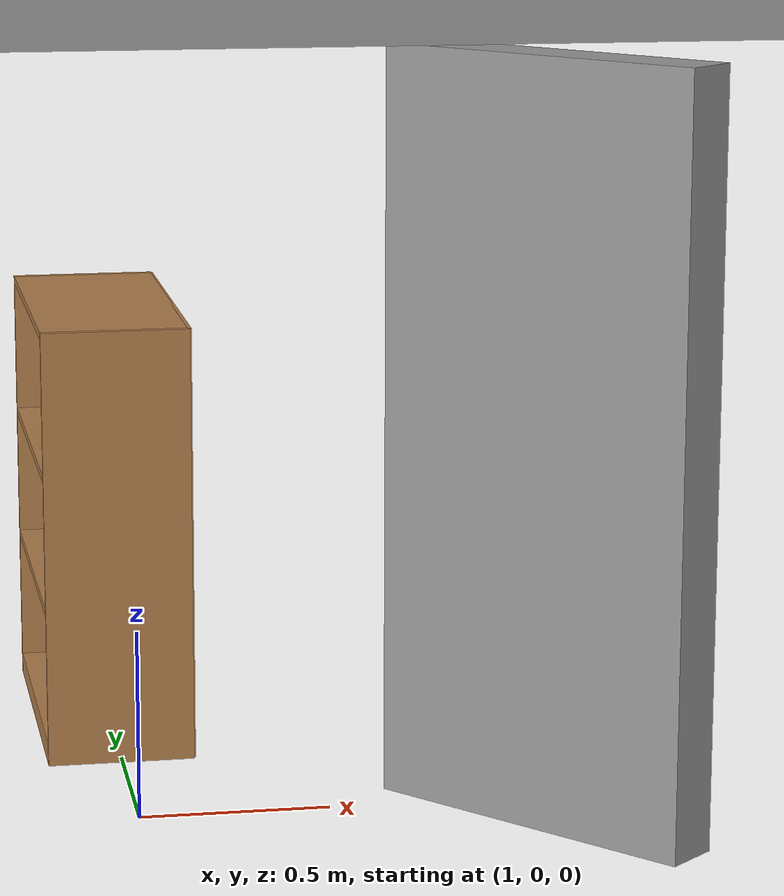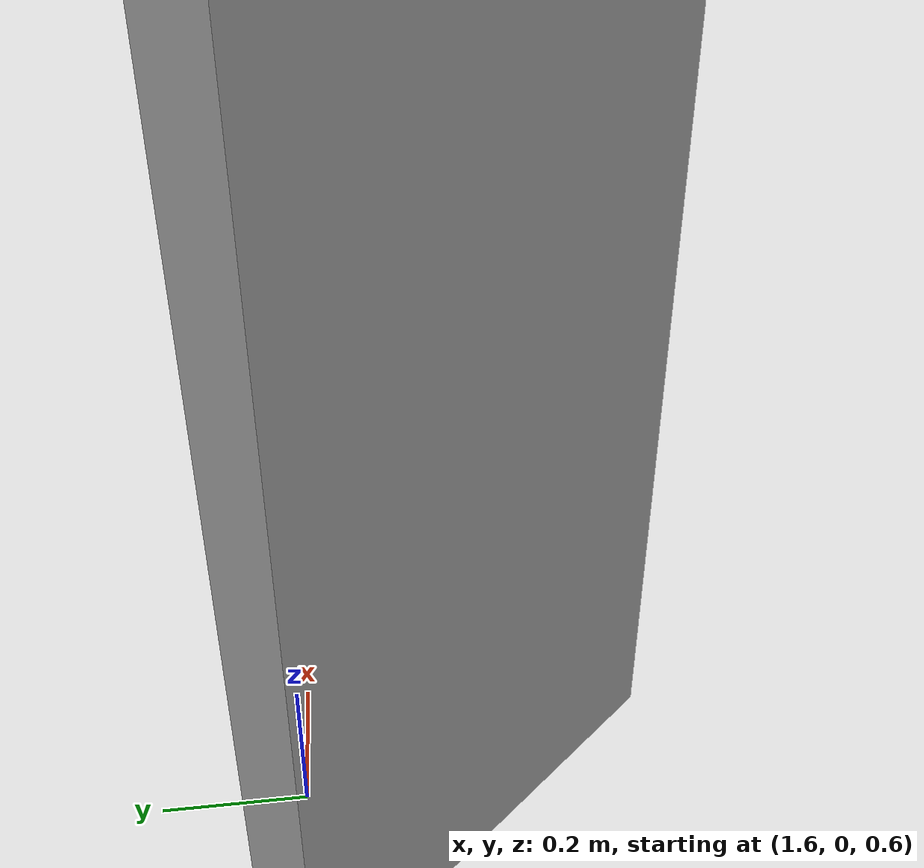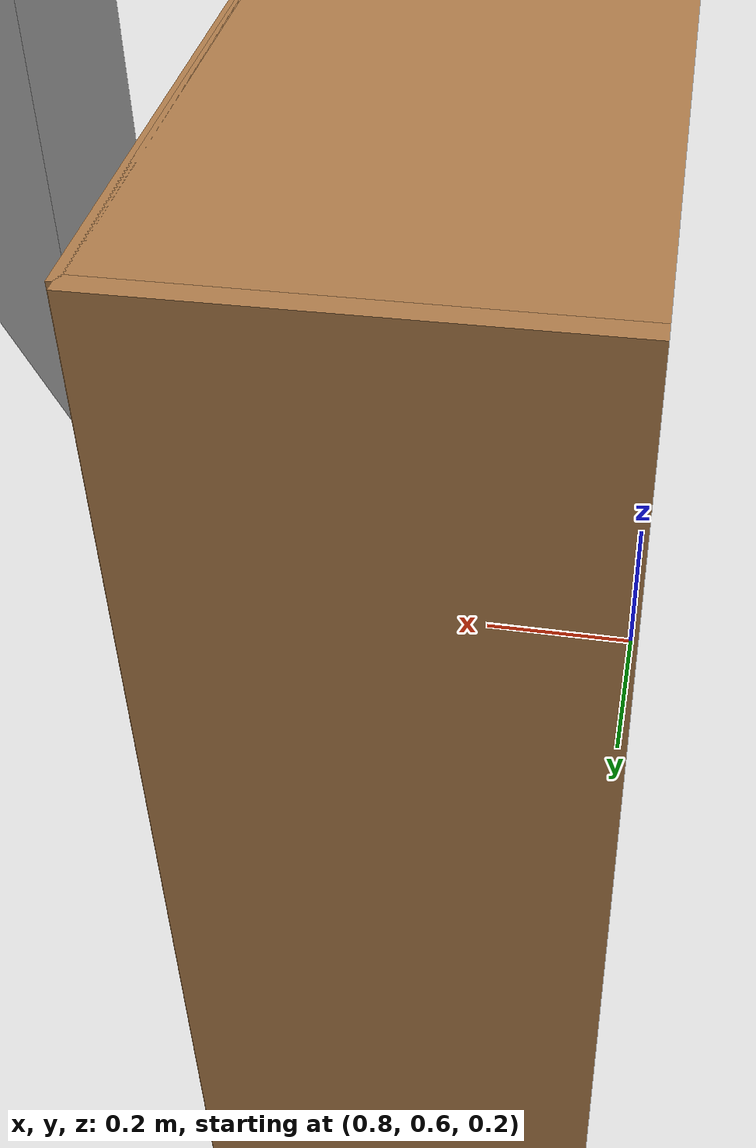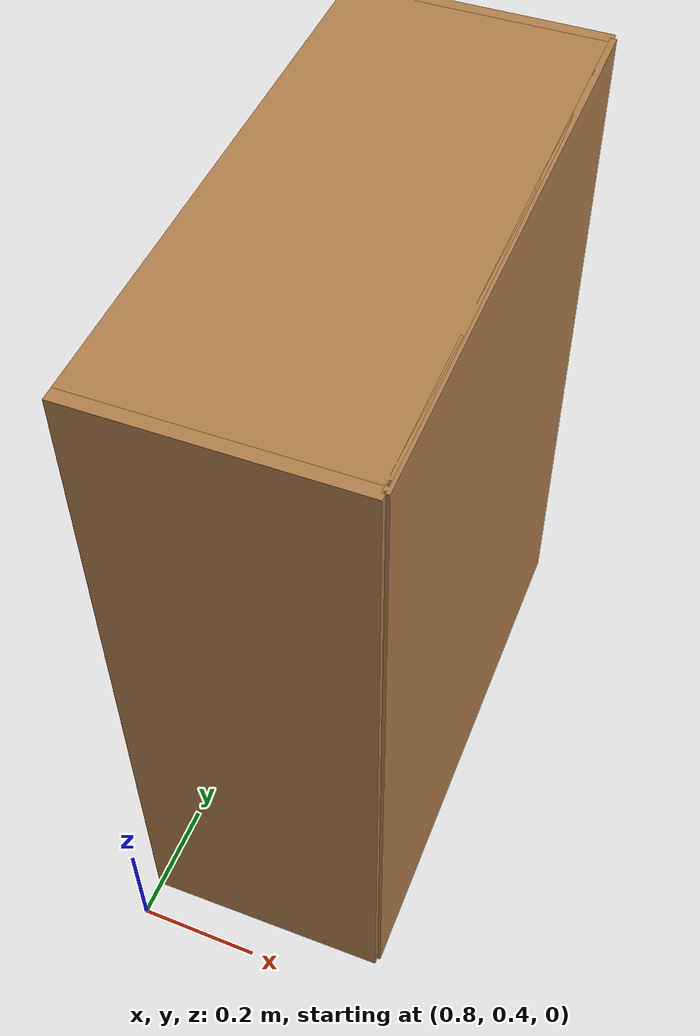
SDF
<sdf version="1.7">
 <world name="default">
  <model name="bookshelf">
   <static>1</static>
   <link name="link">
    <inertial><mass>1</mass></inertial>
    <collision name="back">
     <pose>0 0.005 0.6 0 -0 0</pose>
     <geometry><box><size>0.9 0.01 1.2</size></box></geometry>
    </collision>
    <visual name="visual1">
     <pose>0 0.005 0.6 0 -0 0</pose>
     <geometry><box><size>0.9 0.01 1.2</size></box></geometry>
     <material>
      <script><uri>file://media/materials/scripts/gazebo.material</uri><name>Gazebo/Wood</name></script>
     </material>
    </visual>
    <collision name="left_side">
     <pose>0.45 -0.195 0.6 0 -0 0</pose>
     <geometry><box><size>0.02 0.4 1.2</size></box></geometry>
    </collision>
    <visual name="visual2">
     <pose>0.45 -0.195 0.6 0 -0 0</pose>
     <geometry><box><size>0.02 0.4 1.2</size></box></geometry>
     <material>
      <script><uri>file://media/materials/scripts/gazebo.material</uri><name>Gazebo/Wood</name></script>
     </material>
    </visual>
    <collision name="right_side">
     <pose>-0.45 -0.195 0.6 0 -0 0</pose>
     <geometry><box><size>0.02 0.4 1.2</size></box></geometry>
    </collision>
    <visual name="visual3">
     <pose>-0.45 -0.195 0.6 0 -0 0</pose>
     <geometry><box><size>0.02 0.4 1.2</size></box></geometry>
     <material>
      <script><uri>file://media/materials/scripts/gazebo.material</uri><name>Gazebo/Wood</name></script>
     </material>
    </visual>
    <collision name="bottom">
     <pose>0 -0.195 0.03 0 -0 0</pose>
     <geometry><box><size>0.88 0.4 0.06</size></box></geometry>
    </collision>
    <visual name="visual4">
     <pose>0 -0.195 0.03 0 -0 0</pose>
     <geometry><box><size>0.88 0.4 0.06</size></box></geometry>
     <material>
      <script><uri>file://media/materials/scripts/gazebo.material</uri><name>Gazebo/Wood</name></script>
     </material>
    </visual>
    <collision name="top">
     <pose>0 -0.195 1.19 0 -0 0</pose>
     <geometry><box><size>0.88 0.4 0.02</size></box></geometry>
    </collision>
    <visual name="visual5">
     <pose>0 -0.195 1.19 0 -0 0</pose>
     <geometry><box><size>0.88 0.4 0.02</size></box></geometry>
     <material>
      <script><uri>file://media/materials/scripts/gazebo.material</uri><name>Gazebo/Wood</name></script>
     </material>
    </visual>
    <collision name="low_shelf">
     <pose>0 -0.195 0.43 0 -0 0</pose>
     <geometry><box><size>0.88 0.4 0.02</size></box></geometry>
    </collision>
    <visual name="visual6">
     <pose>0 -0.195 0.43 0 -0 0</pose>
     <geometry><box><size>0.88 0.4 0.02</size></box></geometry>
     <material>
      <script><uri>file://media/materials/scripts/gazebo.material</uri><name>Gazebo/Wood</name></script>
     </material>
    </visual>
    <collision name="high_shelf">
     <pose>0 -0.195 0.8 0 -0 0</pose>
     <geometry><box><size>0.88 0.4 0.02</size></box></geometry>
    </collision>
    <visual name="visual7">
     <pose>0 -0.195 0.8 0 -0 0</pose>
     <geometry><box><size>0.88 0.4 0.02</size></box></geometry>
     <material>
      <script><uri>file://media/materials/scripts/gazebo.material</uri><name>Gazebo/Wood</name></script>
     </material>
    </visual>
   </link>
   <pose>1.18489 0.921683 0 0 0 -1.5557</pose>
  </model>
  <model name="demo_clean">
   <link name="Wall_21_clone_0_clone_0_clone_clone_clone_clone">
    <pose>2.0073 -0.280742 -0.23202 0 -0 2.28452</pose>
    <inertial>
     <inertia><ixx>0</ixx><ixy>0</ixy><ixz>0</ixz><iyy>0</iyy><iyz>0</iyz><izz>0</izz></inertia>
     <mass>0</mass>
    </inertial>
    <gravity>0</gravity>
    <visual name="Wall_21_Visual">
     <pose>0 0 1.25 0 -0 0</pose>
     <geometry><box><size>0.924919 0.15 1.96033</size></box></geometry>
     <material>
      <script><uri>file://media/materials/scripts/gazebo.material</uri><name>Gazebo/Grey</name></script>
      <ambient>1 1 1 1</ambient>
      <shader type="pixel"><normal_map>__default__</normal_map></shader>
      <diffuse>0.7 0.7 0.7 1</diffuse>
      <specular>0.01 0.01 0.01 1</specular>
      <emissive>0 0 0 1</emissive>
     </material>
     <meta><layer>0</layer></meta>
    </visual>
    <collision name="Wall_21_Collision">
     <pose>0 0 1.25 0 -0 0</pose>
     <geometry><box><size>0.924919 0.15 1.96033</size></box></geometry>
     <surface>
      <friction>
       <ode><mu>1</mu><mu2>1</mu2><fdir1>0 0 0</fdir1><slip1>0</slip1><slip2>0</slip2></ode>
       <torsional>
        <coefficient>1</coefficient>
        <patch_radius>0</patch_radius>
        <surface_radius>0</surface_radius>
        <use_patch_radius>1</use_patch_radius>
        <ode><slip>0</slip></ode>
       </torsional>
      </friction>
      <bounce><restitution_coefficient>0</restitution_coefficient><threshold>1e+06</threshold></bounce>
      <contact>
       <collide_without_contact>0</collide_without_contact>
       <collide_without_contact_bitmask>1</collide_without_contact_bitmask>
       <collide_bitmask>1</collide_bitmask>
       <ode>
        <soft_cfm>0</soft_cfm>
        <soft_erp>0.2</soft_erp>
        <kp>1e+13</kp>
        <kd>1</kd>
        <max_vel>0.01</max_vel>
        <min_depth>0</min_depth>
       </ode>
       <bullet>
        <split_impulse>1</split_impulse>
        <split_impulse_penetration_threshold>-0.01</split_impulse_penetration_threshold>
        <soft_cfm>0</soft_cfm>
        <soft_erp>0.2</soft_erp>
        <kp>1e+13</kp>
        <kd>1</kd>
       </bullet>
      </contact>
     </surface>
    </collision>
   </link>
   <static>1</static>
  </model>
  <model name="unit_box">
   <pose>0.000346 -0.001021 2.63148 0.001862 -0.000219 -6.5e-05</pose>
   <link name="link">
    <inertial>
     <mass>1</mass>
     <inertia>
      <ixx>0.166667</ixx>
      <ixy>0</ixy>
      <ixz>0</ixz>
      <iyy>0.166667</iyy>
      <iyz>0</iyz>
      <izz>0.166667</izz>
     </inertia>
    </inertial>
    <collision name="collision"><geometry><box><size>16.8952 10.028 0.241305</size></box></geometry></collision>
    <visual name="visual">
     <geometry><box><size>16.8952 10.028 0.241305</size></box></geometry>
     <material>
      <script><name>Gazebo/Grey</name><uri>file://media/materials/scripts/gazebo.material</uri></script>
     </material>
    </visual>
   </link>
  </model>
 </world>
</sdf>
